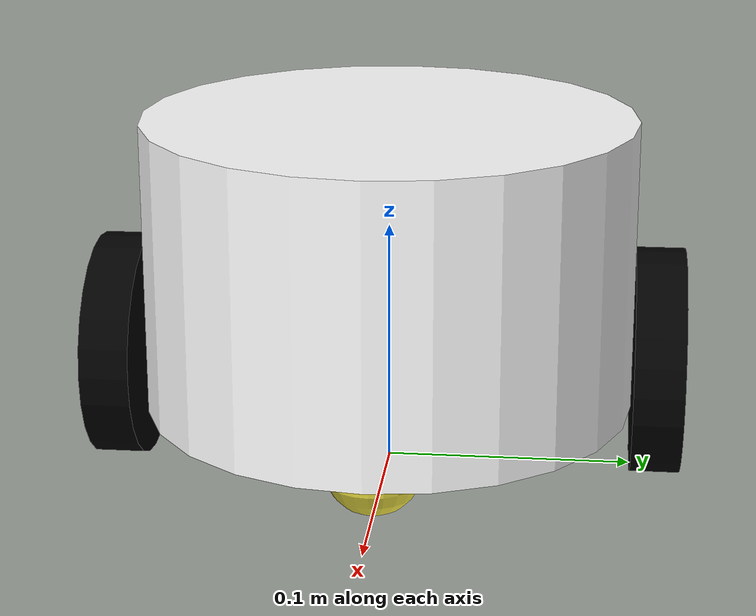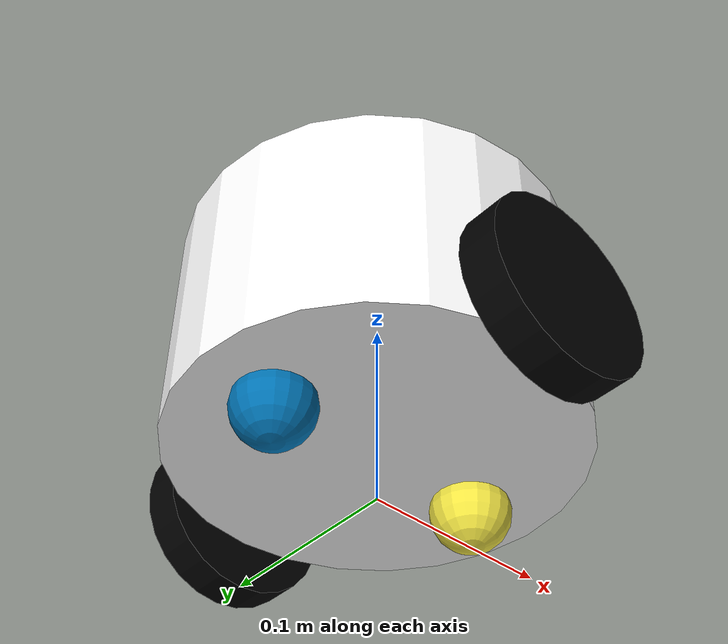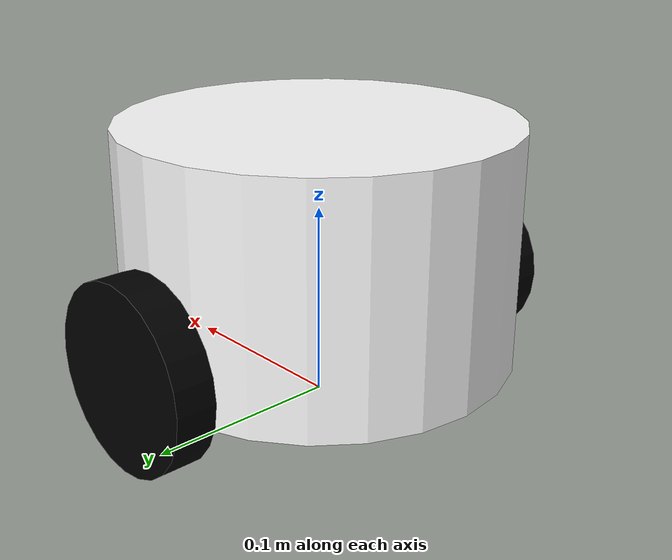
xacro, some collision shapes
<?xml version="1.0"?>

<robot name="test_robot">
	<gazebo>
		<plugin filename="libgazebo_ros_diff_drive.so" name="differential_drive_controller">
			<legacyMode>false</legacyMode>
			<rosDebugLevel>na</rosDebugLevel>
			<alwaysOn>true</alwaysOn>
			<updateRate>20</updateRate>
			<leftJoint>base_to_wheel1</leftJoint>
			<rightJoint>base_to_wheel2</rightJoint>
			<publishWheelTF>false</publishWheelTF>
			<publishOdomTF>false</publishOdomTF>
			<publishWheelJointState>false</publishWheelJointState>
			<wheelTorque>10</wheelTorque>
			<wheelSeparation>0.2</wheelSeparation>
			<wheelDiameter>0.092</wheelDiameter>
			<wheelAcceleration>0</wheelAcceleration>
			<torque>10</torque>
			<commandTopic>cmd_vel</commandTopic>
			<odometryTopic>odom</odometryTopic>
			<odometryFrame>odom</odometryFrame>
			<odometrySource>0</odometrySource>
			<robotBaseFrame>base_link</robotBaseFrame>
			<publishTf>1</publishTf>
		</plugin>
	</gazebo>
	<link name="base_link">
		<pose>0 0 0.1 0 0 0</pose>
		<inertial>
			<mass value="1"/>
			<origin rpy="0 0 0" xyz="0 0 0.085"/>
			<inertia ixx="0.0037" ixy="0" ixz="0" iyy="0.0037" iyz="0" izz="0.005"/>
		</inertial>
		<collision>
			<geometry>
				<cylinder length="0.12" radius="0.1"/>
			</geometry>
			<origin rpy="0 0 0" xyz="0 0 0.085"/>
		</collision>
		<visual>
			<geometry>
				<mesh filename="package://swarm_description/models/agent7/meshes/apriltag_work.dae"/>
			</geometry>
			<origin rpy="0 0 0" xyz="0 0 0.085"/>
			<material name="white">
				<color rgba="1 1 1 1"/>
			</material>
		</visual>
	</link>

	<link name="wheel1">
		<inertial>
			<mass value="0.2"/>
			<origin rpy="0 0 0 " xyz="0 0 0"/>
			<inertia ixx="0.0001125" ixy="0" ixz="0" iyy="0.0001125" iyz="0" izz="0.0002116"/>
		</inertial>

		<collision>
			<geometry>
				<cylinder length="0.02" radius="0.046"/>
			</geometry>
			<origin rpy="0 0 0 " xyz="0 0 0"/>
		</collision>

		<visual>
			<geometry>
				<cylinder length="0.02" radius="0.046"/>
			</geometry>
			<origin rpy="0 0 0 " xyz="0 0 0"/>
			<material name="black">
				<color rgba="0 0 0 1"/>
			</material>
		</visual>
	</link>

	<joint name="base_to_wheel1" type="continuous">
		<parent link="base_link"/>
		<child link="wheel1"/>
		<origin xyz="0 0.11 0.046" rpy="1.5708 0 0"/>
		<joint_properties damping="1.0" friction="1.0"/>
		<axis xyz="0 0 -1"/>
	</joint>

	<link name="wheel2">
		<inertial>
			<mass value="0.2"/>
			<origin rpy="0 0 0 " xyz="0 0 0"/>
			<origin rpy="0 0 0 " xyz="0 0 0"/>
			<inertia ixx="0.0001125" ixy="0" ixz="0" iyy="0.0001125" iyz="0" izz="0.0002116"/>
		</inertial>

		<collision>
			<geometry>
				<cylinder length="0.02" radius="0.046"/>
			</geometry>
			<origin rpy="0 0 0 " xyz="0 0 0"/>
		</collision>
		<visual>
			<geometry>
				<cylinder length="0.02" radius="0.046"/>
			</geometry>
			<origin rpy="0 0 0 " xyz="0 0 0"/>
			<material name="black">
				<color rgba="0 0 0 1"/>
			</material>
		</visual>
	</link>

	<joint name="base_to_wheel2" type="continuous">
		<parent link="base_link"/>
		<child link="wheel2"/>
		<origin xyz="0 -0.11 0.046" rpy="1.5708 0 0"/>
		<joint_properties damping="1.0" friction="1.0"/>
		<axis xyz="0 0 -1"/>
	</joint>

	<link name="caster_wheel1">
		<inertial>
			<mass value="0.01"/>
			<origin rpy="0 0 0 " xyz="0 0 0"/>
			<inertia ixx="0.000032" ixy="0" ixz="0" iyy="0.000032" iyz="0" izz="0.000032"/>
		</inertial>
		<collision>
			<geometry>
				<sphere radius="0.02"/>
			</geometry>
			<origin xyz="0 0 0" rpy="0 0 0"/>
		</collision>

		<visual>
			<geometry>
				<sphere radius="0.02"/>
			</geometry>
			<origin xyz="0 0 0" rpy="0 0 0"/>
		</visual>

		<surface>
			<friction>
				<ode>
					<mu>0</mu>
					<mu2>0</mu2>
				</ode>
			</friction>
		</surface>
	</link>

	<joint name="base_to_caster1" type="continuous">
		<parent link="base_link"/>
		<child link="caster_wheel1"/>
		<origin xyz="0.06 0 0.02"/>
	</joint>

	<link name="caster_wheel2">
		<inertial>
			<mass value="0.01"/>
			<origin rpy="0 0 0 " xyz="0 0 0"/>
			<inertia ixx="0.000032" ixy="0" ixz="0" iyy="0.000032" iyz="0" izz="0.000032"/>
		</inertial>

		<collision>
			<geometry>
				<sphere radius="0.02"/>
			</geometry>
			<origin xyz="0 0 0" rpy="0 0 0"/>
		</collision>

		<visual>
			<geometry>
				<sphere radius="0.02"/>
			</geometry>
			<origin xyz="0 0 0" rpy="0 0 0"/>
		</visual>

		<surface>
			<friction>
				<ode>
					<mu>0</mu>
					<mu2>0</mu2>
				</ode>
			</friction>
		</surface>
	</link>

	<joint name="base_to_caster2" type="continuous">
		<parent link="base_link"/>
		<child link="caster_wheel2"/>
		<origin xyz="-0.06 0 0.02"/>
	</joint>
</robot>
